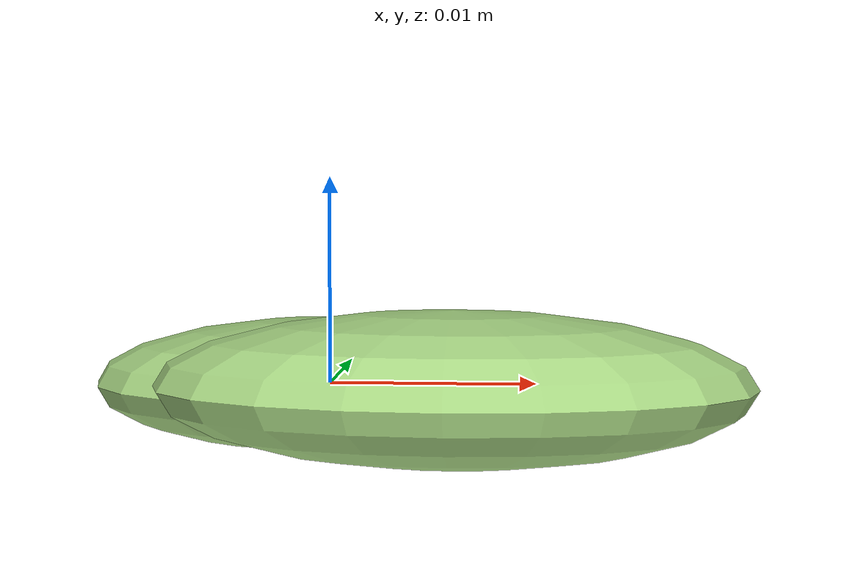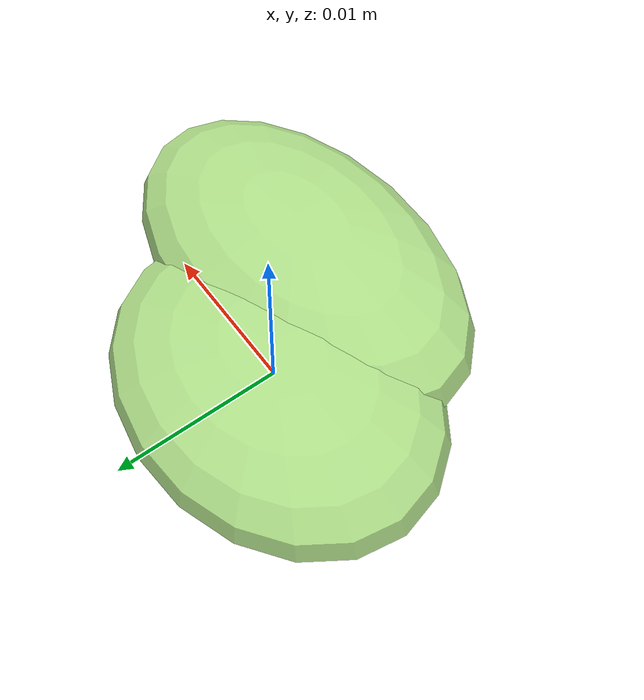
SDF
<?xml version="1.0" ?>
<!-- |    This document was autogenerated by xmacro from data/veggie_template/veggie_base.sdf.xacro  | -->
<!-- |    EDITING THIS FILE BY HAND IS NOT RECOMMENDED                                               | -->
<sdf version="1.8">
	<!-- Parameters -->
	<!-- Base -->
	<!-- Joint 0 -->
	<!-- Link 1 -->
	<!-- Joint 1 -->
	<!-- Link 2 -->
	<!-- Primitives -->
	<!-- All dimensions are half -->
	<!-- Object -->
	<model name="veggie">
		<!-- link0 -->
		<link name="link0">
			<inertial>
				<mass>0.0013297192547065601</mass>
				<inertia>
					<ixx>2.327517957500499e-08</ixx>
					<ixy>0</ixy>
					<ixz>0</ixz>
					<iyy>3.754966721575565e-08</iyy>
					<iyz>0</iyz>
					<izz>5.5566881632622805e-08</izz>
				</inertia>
			</inertial>
			<visual name="link0_visual">
				<pose>0 0 0 0 0 0</pose>
				<geometry>
					<ellipsoid>
						<radii>0.011458991525621964 0.008810997070346879 0.0031441182941458873</radii>
					</ellipsoid>
				</geometry>
				<material>
					<ambient>0.659 0.839 0.514 1</ambient>
					<diffuse>0.659 0.839 0.514 1</diffuse>
					<specular>0 0 0 0</specular>
					<emissive>0 0 0 1</emissive>
				</material>
			</visual>
			<collision name="link0_collision">
				<pose>0 0 0 0 0 0 </pose>
				<geometry>
					<ellipsoid>
						<radii>0.011458991525621964 0.008810997070346879 0.0031441182941458873</radii>
					</ellipsoid>
				</geometry>
			</collision>
		</link>
		<!-- link1 -->
		<joint name="joint0" type="fixed">
			<pose relative_to="link0">0.006324198327240026 -0.006219083587759512 0.0005479231580112395 0.0 0.0 0.0</pose>
			<parent>link0</parent>
			<child>link1</child>
		</joint>
		<link name="link1">
			<pose relative_to="joint0">0 0 0 0 0 0</pose>
			<inertial>
				<mass>0.0017386954186161749</mass>
				<inertia>
					<ixx>2.888224050683595e-08</ixx>
					<ixy>0</ixy>
					<ixz>0</ixz>
					<iyy>7.15383530792853e-08</iyy>
					<iyz>0</iyz>
					<izz>9.160032501868203e-08</izz>
				</inertia>
			</inertial>
			<visual name="link1_visual">
				<pose>0 0 0 0 0 0</pose>
				<geometry>
					<ellipsoid>
						<radii>0.01389395247727624 0.008388975418348146 0.003561222872267312</radii>
					</ellipsoid>
				</geometry>
				<material>
					<ambient>0.659 0.839 0.514 1</ambient>
					<diffuse>0.659 0.839 0.514 1</diffuse>
					<specular>0 0 0 0</specular>
					<emissive>0 0 0 1</emissive>
				</material>
			</visual>
			<collision name="link1_collision">
				<pose>0 0 0 0 0 0 </pose>
				<geometry>
					<ellipsoid>
						<radii>0.01389395247727624 0.008388975418348146 0.003561222872267312</radii>
					</ellipsoid>
				</geometry>
			</collision>
		</link>
		<!-- link2 -->
	</model>
</sdf>
